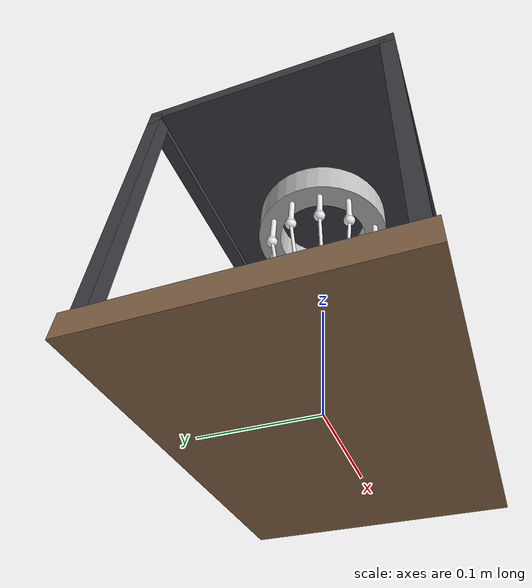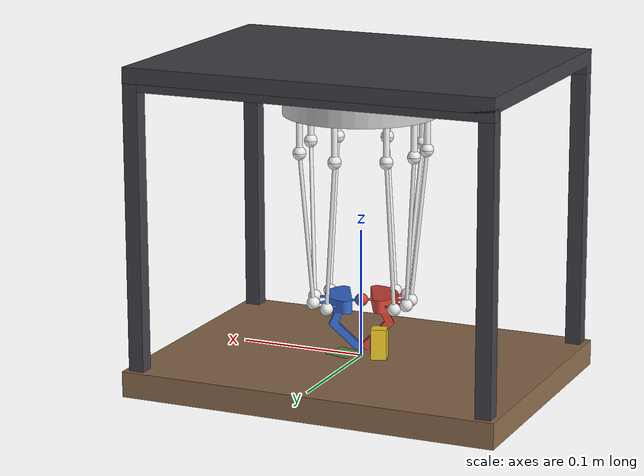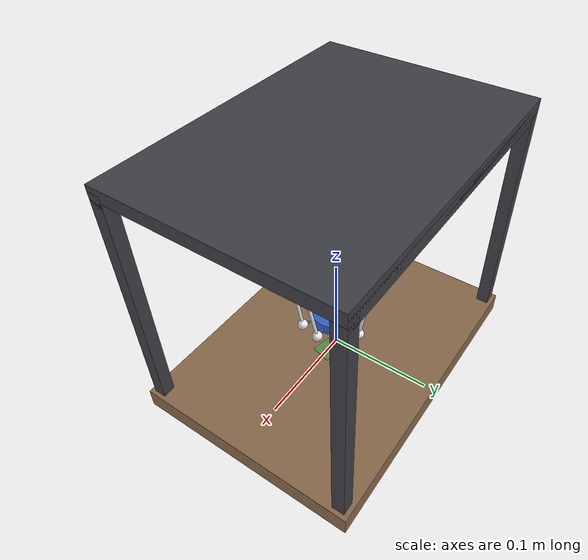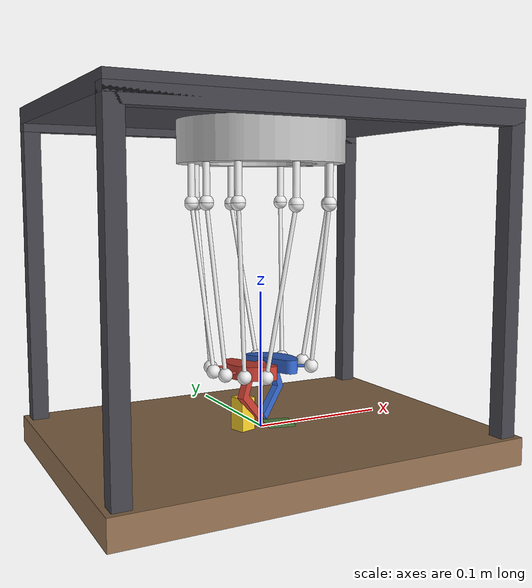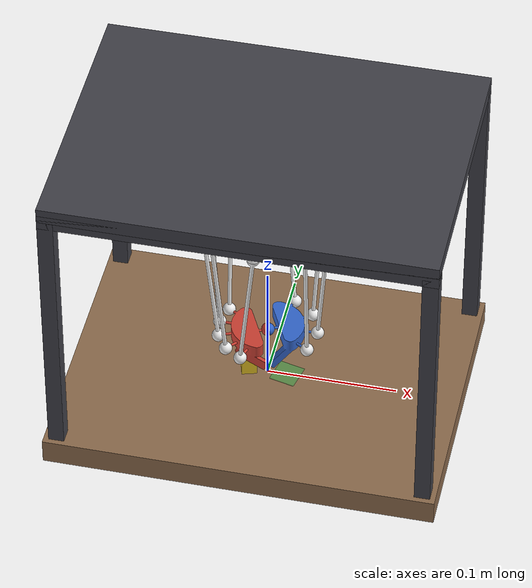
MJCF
<!-- Generated by scripts/generate_mjcf.py from the files in config/.
     Do not edit by hand. -->
<mujoco model="ninedof_pick_place">
  <compiler angle="radian" meshdir="../meshes" autolimits="true"/>
  <option timestep="0.0005" integrator="implicitfast"/>

  <default>
    <default class="visual">
      <geom type="mesh" contype="0" conaffinity="0" group="2" mass="0"/>
    </default>
    <default class="finger">
      <geom type="mesh" contype="2" conaffinity="0" condim="4" group="3" mass="0" friction="0.4 0.02 0.0001" rgba="0.9 0.6 0.1 0.4"/>
    </default>
    <equality solref="0.001 1" solimp="0.99 0.999 0.0001"/>
  </default>

  <asset>
    <mesh name="base" file="base.stl"/>
    <mesh name="slider" file="slider.stl"/>
    <mesh name="distal_link" file="distal_link.stl"/>
    <mesh name="platform_1" file="platform_1.stl"/>
    <mesh name="platform_2" file="platform_2.stl"/>
    <mesh name="finger_1_lower" vertex="-0.01782 0.00609 0.005 -0.00967 0.00761 0.005 -0.0119 0.00314 0.005 -0.01559 0.01057 0.005 -0.01721 0.00579 0.01773 -0.01498 0.01026 0.01773 -0.02367 0.00901 0.019 -0.02144 0.01348 0.019"/>
    <mesh name="finger_1_upper" vertex="-0.01721 0.00579 0.01773 -0.01498 0.01026 0.01773 -0.02367 0.00901 0.019 -0.02144 0.01348 0.019 0.00135 0.00212 0.03597 -0.00089 -0.00235 0.03597 -0.00245 0.00402 0.04021 -0.00468 -0.00046 0.04021"/>
    <mesh name="finger_2_lower" vertex="0.0119 -0.00314 0.005 0.01559 -0.01057 0.005 0.00967 -0.00761 0.005 0.01782 -0.00609 0.005 0.01721 -0.00579 0.01773 0.01498 -0.01026 0.01773 0.02367 -0.00901 0.019 0.02144 -0.01348 0.019"/>
    <mesh name="finger_2_upper" vertex="0.01721 -0.00579 0.01773 0.01498 -0.01026 0.01773 0.02367 -0.00901 0.019 0.02144 -0.01348 0.019 -0.00135 -0.00212 0.03597 0.00089 0.00235 0.03597 0.00245 -0.00402 0.04021 0.00468 0.00046 0.04021"/>
    <material name="base_grey" rgba="0.75 0.75 0.75 1"/>
    <material name="rod_white" rgba="0.92 0.92 0.92 1"/>
    <material name="platform_1_red" rgba="0.80 0.25 0.20 1"/>
    <material name="platform_2_blue" rgba="0.20 0.40 0.80 1"/>
    <texture type="skybox" builtin="gradient" rgb1="0.35 0.45 0.55" rgb2="0.05 0.05 0.08" width="512" height="3072"/>
    <texture type="2d" name="floor_tex" builtin="checker" mark="edge" rgb1="0.25 0.27 0.3" rgb2="0.2 0.22 0.25" markrgb="0.5 0.5 0.5" width="300" height="300"/>
    <material name="floor_mat" texture="floor_tex" texuniform="true" texrepeat="8 8"/>
    <material name="table_mat" rgba="0.55 0.42 0.30 1"/>
    <material name="frame_mat" rgba="0.25 0.25 0.28 1"/>
    <material name="block_mat" rgba="0.95 0.80 0.15 1"/>
    <material name="marker_mat" rgba="0.10 0.10 0.10 1"/>
    <material name="target_mat" rgba="0.15 0.75 0.30 0.45"/>
  </asset>

  <worldbody>
    <light name="key" pos="0.3 -0.4 0.8" dir="-0.3 0.4 -0.8" diffuse="0.8 0.8 0.8" castshadow="true"/>
    <light name="fill" pos="-0.4 0.3 0.6" dir="0.4 -0.3 -0.6" diffuse="0.35 0.35 0.35" castshadow="false"/>
    <geom name="floor" type="plane" size="1 1 0.05" pos="0 0 -0.72" material="floor_mat" contype="1" conaffinity="1"/>
    <geom name="table" type="box" size="0.15 0.11 0.01" pos="0 0 -0.01" material="table_mat" contype="1" conaffinity="1" friction="0.6 0.005 0.0001"/>
    <geom name="frame_top" type="box" size="0.146 0.106 0.006" pos="0 0 0.22768" material="frame_mat" contype="0" conaffinity="0"/>
    <geom name="frame_post_pp" type="box" size="0.006 0.006 0.1108" pos="0.14 0.1 0.1108" material="frame_mat" contype="0" conaffinity="0"/>
    <geom name="frame_post_pm" type="box" size="0.006 0.006 0.1108" pos="0.14 -0.1 0.1108" material="frame_mat" contype="0" conaffinity="0"/>
    <geom name="frame_post_mp" type="box" size="0.006 0.006 0.1108" pos="-0.14 0.1 0.1108" material="frame_mat" contype="0" conaffinity="0"/>
    <geom name="frame_post_mm" type="box" size="0.006 0.006 0.1108" pos="-0.14 -0.1 0.1108" material="frame_mat" contype="0" conaffinity="0"/>
    <geom name="frame_beam_p" type="box" size="0.146 0.006 0.006" pos="0 0.10 0.22168" material="frame_mat" contype="0" conaffinity="0"/>
    <geom name="frame_beam_m" type="box" size="0.146 0.006 0.006" pos="0 -0.10 0.22168" material="frame_mat" contype="0" conaffinity="0"/>
    <geom name="target_zone" type="box" size="0.01 0.01 0.0005" pos="0.015 0.0 0.0005" euler="0 0 -0.23196" material="target_mat" contype="0" conaffinity="0"/>
    <body name="block" pos="-0.015 0.0 0.012" euler="0 0 0.29164">
      <freejoint name="block_free"/>
      <geom name="block" type="box" size="0.006 0.006 0.012" mass="0.005" material="block_mat" friction="1.0 0.02 0.0001" condim="4" contype="1" conaffinity="3"/>
      <geom name="block_marker" type="box" size="0.0005 0.0036 0.0072" pos="0.006500000000000001 0 0" material="marker_mat" contype="0" conaffinity="0" mass="0"/>
    </body>
    <camera name="grasp_cam" mode="fixed" pos="0.125 -0.19 0.105" xyaxes="0.835417082 0.549616501 -0 -0.140200739 0.213105123 0.966917762" fovy="45"/>
    <body name="robot_mount" pos="0 0 0.19168" euler="3.14159265 0 0">
      <body name="base_link">
        <geom class="visual" mesh="base" material="base_grey" pos="0 0 -0.03"/>
        <body name="leg1_slider" pos="-0 0.05 -0.0220148755">
          <joint name="leg1_actuator_joint" type="slide" axis="0 0 1" ref="5.12447657e-06" range="-0.025 0.025" armature="0.01" actuatorfrcrange="-20.0 20.0"/>
          <inertial pos="0 0 0.02525" mass="0.015" diaginertia="3.1878125e-06 3.1878125e-06 1e-09"/>
          <geom class="visual" mesh="slider" material="rod_white"/>
          <body name="leg1_distal" pos="0 0 0.0505" quat="0.996232226 0.0646184678 -0.0578429391 0">
            <joint name="leg1_lower_joint" type="ball" damping="0.0005"/>
            <inertial pos="0 0 0.06" mass="0.005" fullinertia="1.2486e-05 1.2486e-05 3.0725e-08 0 0 0"/>
            <geom class="visual" mesh="distal_link" material="rod_white"/>
            <site name="leg1_A" pos="0 0 0.12" size="0.002"/>
          </body>
        </body>
        <body name="leg2_slider" pos="-0.03543 0.03543 -0.0231955649">
          <joint name="leg2_actuator_joint" type="slide" axis="0 0 1" ref="4.43507987e-06" range="-0.025 0.025" armature="0.01" actuatorfrcrange="-20.0 20.0"/>
          <inertial pos="0 0 0.02525" mass="0.015" diaginertia="3.1878125e-06 3.1878125e-06 1e-09"/>
          <geom class="visual" mesh="slider" material="rod_white"/>
          <body name="leg2_distal" pos="0 0 0.0505" quat="0.998698246 0.0362138081 0.0359217613 -0">
            <joint name="leg2_lower_joint" type="ball" damping="0.0005"/>
            <inertial pos="0 0 0.06" mass="0.005" fullinertia="1.2486e-05 1.2486e-05 3.0725e-08 0 0 0"/>
            <geom class="visual" mesh="distal_link" material="rod_white"/>
            <site name="leg2_A" pos="0 0 0.12" size="0.002"/>
          </body>
        </body>
        <body name="leg3_slider" pos="-0.0483 0.01294 -0.0231061157">
          <joint name="leg3_actuator_joint" type="slide" axis="0 0 1" ref="3.88429494e-06" range="-0.025 0.025" armature="0.01" actuatorfrcrange="-20.0 20.0"/>
          <inertial pos="0 0 0.02525" mass="0.015" diaginertia="3.1878125e-06 3.1878125e-06 1e-09"/>
          <geom class="visual" mesh="slider" material="rod_white"/>
          <body name="leg3_distal" pos="0 0 0.0505" quat="0.998511633 -0.0052160968 0.0542891355 0">
            <joint name="leg3_lower_joint" type="ball" damping="0.0005"/>
            <inertial pos="0 0 0.06" mass="0.005" fullinertia="1.2486e-05 1.2486e-05 3.0725e-08 0 0 0"/>
            <geom class="visual" mesh="distal_link" material="rod_white"/>
            <site name="leg3_A" pos="0 0 0.12" size="0.002"/>
          </body>
        </body>
        <body name="leg4_slider" pos="-0.0483 -0.01294 -0.0227261878">
          <joint name="leg4_actuator_joint" type="slide" axis="0 0 1" ref="3.81218793e-06" range="-0.025 0.025" armature="0.01" actuatorfrcrange="-20.0 20.0"/>
          <inertial pos="0 0 0.02525" mass="0.015" diaginertia="3.1878125e-06 3.1878125e-06 1e-09"/>
          <geom class="visual" mesh="slider" material="rod_white"/>
          <body name="leg4_distal" pos="0 0 0.0505" quat="0.997718622 -0.0508242827 0.0444347057 0">
            <joint name="leg4_lower_joint" type="ball" damping="0.0005"/>
            <inertial pos="0 0 0.06" mass="0.005" fullinertia="1.2486e-05 1.2486e-05 3.0725e-08 0 0 0"/>
            <geom class="visual" mesh="distal_link" material="rod_white"/>
            <site name="leg4_A" pos="0 0 0.12" size="0.002"/>
          </body>
        </body>
        <body name="leg5_slider" pos="-0.03536 -0.03536 -0.0221234349">
          <joint name="leg5_actuator_joint" type="slide" axis="0 0 1" ref="6.56513862e-06" range="-0.025 0.025" armature="0.01" actuatorfrcrange="-20.0 20.0"/>
          <inertial pos="0 0 0.02525" mass="0.015" diaginertia="3.1878125e-06 3.1878125e-06 1e-09"/>
          <geom class="visual" mesh="slider" material="rod_white"/>
          <body name="leg5_distal" pos="0 0 0.0505" quat="0.996459221 -0.0837130762 0.00781935327 0">
            <joint name="leg5_lower_joint" type="ball" damping="0.0005"/>
            <inertial pos="0 0 0.06" mass="0.005" fullinertia="1.2486e-05 1.2486e-05 3.0725e-08 0 0 0"/>
            <geom class="visual" mesh="distal_link" material="rod_white"/>
            <site name="leg5_A" pos="0 0 0.12" size="0.002"/>
          </body>
        </body>
        <body name="leg6_slider" pos="0.0483 0.01294 -0.0220915579">
          <joint name="leg6_actuator_joint" type="slide" axis="0 0 1" ref="-1.55786579e-06" range="-0.025 0.025" armature="0.01" actuatorfrcrange="-20.0 20.0"/>
          <inertial pos="0 0 0.02525" mass="0.015" diaginertia="3.1878125e-06 3.1878125e-06 1e-09"/>
          <geom class="visual" mesh="slider" material="rod_white"/>
          <body name="leg6_distal" pos="0 0 0.0505" quat="0.996392572 0.0721352226 -0.0447029293 0">
            <joint name="leg6_lower_joint" type="ball" damping="0.0005"/>
            <inertial pos="0 0 0.06" mass="0.005" fullinertia="1.2486e-05 1.2486e-05 3.0725e-08 0 0 0"/>
            <geom class="visual" mesh="distal_link" material="rod_white"/>
            <site name="leg6_A" pos="0 0 0.12" size="0.002"/>
          </body>
        </body>
        <body name="leg7_slider" pos="0.03536 0.03536 -0.0221234349">
          <joint name="leg7_actuator_joint" type="slide" axis="0 0 1" ref="6.56513862e-06" range="-0.025 0.025" armature="0.01" actuatorfrcrange="-20.0 20.0"/>
          <inertial pos="0 0 0.02525" mass="0.015" diaginertia="3.1878125e-06 3.1878125e-06 1e-09"/>
          <geom class="visual" mesh="slider" material="rod_white"/>
          <body name="leg7_distal" pos="0 0 0.0505" quat="0.996459221 0.0837130762 -0.00781935327 0">
            <joint name="leg7_lower_joint" type="ball" damping="0.0005"/>
            <inertial pos="0 0 0.06" mass="0.005" fullinertia="1.2486e-05 1.2486e-05 3.0725e-08 0 0 0"/>
            <geom class="visual" mesh="distal_link" material="rod_white"/>
            <site name="leg7_A" pos="0 0 0.12" size="0.002"/>
          </body>
        </body>
        <body name="leg8_slider" pos="-0 -0.05 -0.0220148755">
          <joint name="leg8_actuator_joint" type="slide" axis="0 0 1" ref="5.12447657e-06" range="-0.025 0.025" armature="0.01" actuatorfrcrange="-20.0 20.0"/>
          <inertial pos="0 0 0.02525" mass="0.015" diaginertia="3.1878125e-06 3.1878125e-06 1e-09"/>
          <geom class="visual" mesh="slider" material="rod_white"/>
          <body name="leg8_distal" pos="0 0 0.0505" quat="0.996232226 -0.0646184678 0.0578429391 0">
            <joint name="leg8_lower_joint" type="ball" damping="0.0005"/>
            <inertial pos="0 0 0.06" mass="0.005" fullinertia="1.2486e-05 1.2486e-05 3.0725e-08 0 0 0"/>
            <geom class="visual" mesh="distal_link" material="rod_white"/>
            <site name="leg8_A" pos="0 0 0.12" size="0.002"/>
          </body>
        </body>
        <body name="leg9_slider" pos="0.03536 -0.03536 -0.0230712935">
          <joint name="leg9_actuator_joint" type="slide" axis="0 0 1" ref="8.70650597e-06" range="-0.025 0.025" armature="0.01" actuatorfrcrange="-20.0 20.0"/>
          <inertial pos="0 0 0.02525" mass="0.015" diaginertia="3.1878125e-06 3.1878125e-06 1e-09"/>
          <geom class="visual" mesh="slider" material="rod_white"/>
          <body name="leg9_distal" pos="0 0 0.0505" quat="0.998438976 -0.0516222502 -0.0213249554 0">
            <joint name="leg9_lower_joint" type="ball" damping="0.0005"/>
            <inertial pos="0 0 0.06" mass="0.005" fullinertia="1.2486e-05 1.2486e-05 3.0725e-08 0 0 0"/>
            <geom class="visual" mesh="distal_link" material="rod_white"/>
            <site name="leg9_A" pos="0 0 0.12" size="0.002"/>
          </body>
        </body>
      </body>
    </body>
      <body name="platform_1" pos="0 -1.79631192e-17 0.045" euler="3.14159265 0 0">
        <freejoint name="platform_1_free"/>
        <inertial pos="-0.01581 0.007503 0.002803" mass="0.025" fullinertia="4.9274e-06 3.9517e-06 5.2415e-06 -6.7395e-07 -3.4207e-07 1.4387e-07"/>
        <geom class="visual" mesh="platform_1" material="platform_1_red"/>
        <geom class="finger" name="finger_1_lower" mesh="finger_1_lower" friction="1.2 0.02 0.0001"/>
        <geom class="finger" name="finger_1_upper" mesh="finger_1_upper" friction="1.2 0.02 0.0001"/>
        <body name="platform_2">
          <joint name="central_sphere_joint" type="ball" damping="0.0005"/>
          <inertial pos="0.015363 -0.007355 0.002882" mass="0.025" fullinertia="4.8955e-06 3.8475e-06 5.0176e-06 -6.9869e-07 3.196e-07 -1.3731e-07"/>
          <geom class="visual" mesh="platform_2" material="platform_2_blue"/>
          <geom class="finger" name="finger_2_lower" mesh="finger_2_lower" friction="1.2 0.02 0.0001"/>
          <geom class="finger" name="finger_2_upper" mesh="finger_2_upper" friction="1.2 0.02 0.0001"/>
        </body>
      </body>
  </worldbody>

  <equality>
    <connect name="leg1_upper_joint" body1="leg1_distal" body2="platform_1" anchor="0 0 0.12"/>
    <connect name="leg2_upper_joint" body1="leg2_distal" body2="platform_1" anchor="0 0 0.12"/>
    <connect name="leg3_upper_joint" body1="leg3_distal" body2="platform_1" anchor="0 0 0.12"/>
    <connect name="leg4_upper_joint" body1="leg4_distal" body2="platform_1" anchor="0 0 0.12"/>
    <connect name="leg5_upper_joint" body1="leg5_distal" body2="platform_1" anchor="0 0 0.12"/>
    <connect name="leg6_upper_joint" body1="leg6_distal" body2="platform_2" anchor="0 0 0.12"/>
    <connect name="leg7_upper_joint" body1="leg7_distal" body2="platform_2" anchor="0 0 0.12"/>
    <connect name="leg8_upper_joint" body1="leg8_distal" body2="platform_2" anchor="0 0 0.12"/>
    <connect name="leg9_upper_joint" body1="leg9_distal" body2="platform_2" anchor="0 0 0.12"/>
  </equality>

  <contact>
    <exclude body1="platform_1" body2="platform_2"/>
    <exclude body1="platform_1" body2="block"/>
    <exclude body1="platform_2" body2="block"/>
  </contact>

  <actuator>
    <position name="leg1_actuator_joint" joint="leg1_actuator_joint" kp="50000.0" dampratio="1.0" ctrlrange="-0.025 0.025" forcerange="-20.0 20.0"/>
    <position name="leg2_actuator_joint" joint="leg2_actuator_joint" kp="50000.0" dampratio="1.0" ctrlrange="-0.025 0.025" forcerange="-20.0 20.0"/>
    <position name="leg3_actuator_joint" joint="leg3_actuator_joint" kp="50000.0" dampratio="1.0" ctrlrange="-0.025 0.025" forcerange="-20.0 20.0"/>
    <position name="leg4_actuator_joint" joint="leg4_actuator_joint" kp="50000.0" dampratio="1.0" ctrlrange="-0.025 0.025" forcerange="-20.0 20.0"/>
    <position name="leg5_actuator_joint" joint="leg5_actuator_joint" kp="50000.0" dampratio="1.0" ctrlrange="-0.025 0.025" forcerange="-20.0 20.0"/>
    <position name="leg6_actuator_joint" joint="leg6_actuator_joint" kp="50000.0" dampratio="1.0" ctrlrange="-0.025 0.025" forcerange="-20.0 20.0"/>
    <position name="leg7_actuator_joint" joint="leg7_actuator_joint" kp="50000.0" dampratio="1.0" ctrlrange="-0.025 0.025" forcerange="-20.0 20.0"/>
    <position name="leg8_actuator_joint" joint="leg8_actuator_joint" kp="50000.0" dampratio="1.0" ctrlrange="-0.025 0.025" forcerange="-20.0 20.0"/>
    <position name="leg9_actuator_joint" joint="leg9_actuator_joint" kp="50000.0" dampratio="1.0" ctrlrange="-0.025 0.025" forcerange="-20.0 20.0"/>
  </actuator>

  <sensor>
    <actuatorfrc name="leg1_force" actuator="leg1_actuator_joint"/>
    <actuatorfrc name="leg2_force" actuator="leg2_actuator_joint"/>
    <actuatorfrc name="leg3_force" actuator="leg3_actuator_joint"/>
    <actuatorfrc name="leg4_force" actuator="leg4_actuator_joint"/>
    <actuatorfrc name="leg5_force" actuator="leg5_actuator_joint"/>
    <actuatorfrc name="leg6_force" actuator="leg6_actuator_joint"/>
    <actuatorfrc name="leg7_force" actuator="leg7_actuator_joint"/>
    <actuatorfrc name="leg8_force" actuator="leg8_actuator_joint"/>
    <actuatorfrc name="leg9_force" actuator="leg9_actuator_joint"/>
  </sensor>

  <visual>
    <global offwidth="1920" offheight="1080"/>
    <quality shadowsize="4096"/>
    <headlight ambient="0.25 0.25 0.25" diffuse="0.3 0.3 0.3" specular="0 0 0"/>
  </visual>
  <statistic center="0 0 0.12" extent="0.35"/>
</mujoco>
